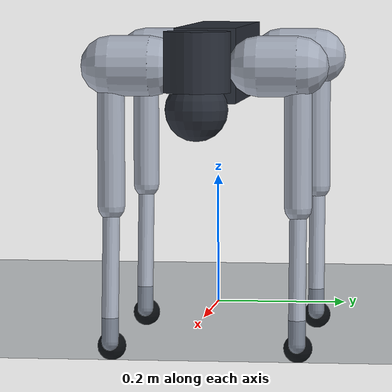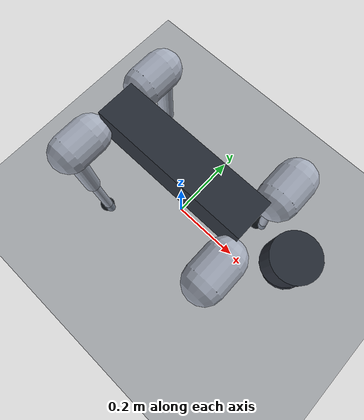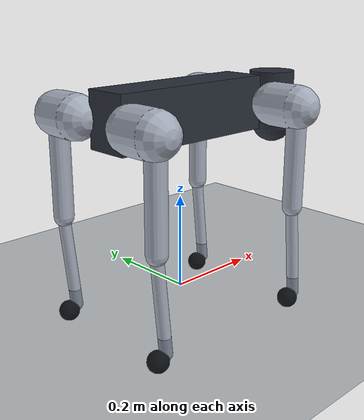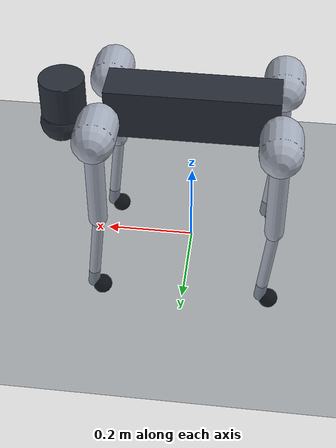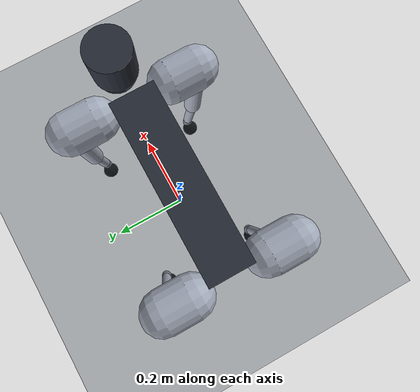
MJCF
<mujoco model="unitree_go2_autoodom">
  <compiler angle="radian" autolimits="true" inertiafromgeom="false"/>
  <option timestep="0.005" gravity="0 0 -9.81" integrator="implicitfast" iterations="50"/>

  <visual>
    <headlight ambient="0.35 0.35 0.35" diffuse="0.7 0.7 0.7" specular="0.2 0.2 0.2"/>
    <rgba haze="0.15 0.25 0.35 1"/>
    <global azimuth="135" elevation="-20"/>
  </visual>

  <default>
    <joint damping="0.1" armature="0.01" frictionloss="0.01"/>
    <geom friction="0.8 0.02 0.001" condim="3" solref="0.004 1" solimp="0.95 0.99 0.001"/>
    <motor gear="1"/>
  </default>

  <asset>
    <texture name="skybox" type="skybox" builtin="gradient" rgb1="0.3 0.5 0.7" rgb2="0 0 0" width="512" height="3072"/>
    <texture name="ground" type="2d" builtin="checker" rgb1="0.2 0.25 0.3" rgb2="0.1 0.15 0.2" width="512" height="512"/>
    <material name="ground" texture="ground" texrepeat="5 5" reflectance="0.05"/>
    <material name="body" rgba="0.16 0.18 0.22 1"/>
    <material name="leg" rgba="0.65 0.68 0.74 1"/>
    <material name="foot" rgba="0.04 0.04 0.04 1"/>
  </asset>

  <worldbody>
    <light pos="0 0 3" dir="0 0 -1" directional="true"/>
    <geom name="floor" type="plane" size="20 20 0.1" material="ground"/>
    <body name="base" pos="0 0 0.38">
      <freejoint name="base_freejoint"/>
      <inertial pos="0.021112 0 -0.005366" mass="6.921" diaginertia="0.02448 0.098077 0.107"/>
      <geom name="base_collision" type="box" size="0.1881 0.04675 0.057" material="body"/>
      <geom name="head_upper" type="cylinder" pos="0.285 0 0.01" size="0.05 0.045" material="body"/>
      <geom name="head_lower" type="sphere" pos="0.293 0 -0.06" size="0.047" material="body"/>
      <site name="imu_site" pos="-0.02557 0 0.04232" size="0.006" rgba="1 0 0 1"/>

      <body name="FL_hip" pos="0.1934 0.0465 0">
        <inertial pos="-0.0054 0.00194 -0.000105" mass="0.678" diaginertia="0.00048 0.000884 0.000596"/>
        <joint name="FL_hip_joint" axis="1 0 0" range="-1.0472 1.0472"/>
        <geom type="capsule" fromto="0 0.035 0 0 0.0955 0" size="0.046" material="leg"/>
        <body name="FL_thigh" pos="0 0.0955 0">
          <inertial pos="-0.00374 -0.0223 -0.0327" mass="1.152" diaginertia="0.00584 0.0058 0.00103"/>
          <joint name="FL_thigh_joint" axis="0 1 0" range="-1.5708 3.4907"/>
          <geom type="capsule" fromto="0 0 -0.015 0 0 -0.213" size="0.021" material="leg"/>
          <body name="FL_calf" pos="0 0 -0.213">
            <inertial pos="0.00548 -0.000975 -0.115" mass="0.154" diaginertia="0.00108 0.0011 0.0000329"/>
            <joint name="FL_calf_joint" axis="0 1 0" range="-2.7227 -0.83776"/>
            <geom type="capsule" fromto="0 0 -0.01 0.02 0 -0.205" size="0.013" material="leg"/>
            <geom name="FL_foot" type="sphere" pos="0 0 -0.213" size="0.022" material="foot"/>
          </body>
        </body>
      </body>

      <body name="FR_hip" pos="0.1934 -0.0465 0">
        <inertial pos="-0.0054 -0.00194 -0.000105" mass="0.678" diaginertia="0.00048 0.000884 0.000596"/>
        <joint name="FR_hip_joint" axis="1 0 0" range="-1.0472 1.0472"/>
        <geom type="capsule" fromto="0 -0.035 0 0 -0.0955 0" size="0.046" material="leg"/>
        <body name="FR_thigh" pos="0 -0.0955 0">
          <inertial pos="-0.00374 0.0223 -0.0327" mass="1.152" diaginertia="0.00584 0.0058 0.00103"/>
          <joint name="FR_thigh_joint" axis="0 1 0" range="-1.5708 3.4907"/>
          <geom type="capsule" fromto="0 0 -0.015 0 0 -0.213" size="0.021" material="leg"/>
          <body name="FR_calf" pos="0 0 -0.213">
            <inertial pos="0.00548 0.000975 -0.115" mass="0.154" diaginertia="0.00108 0.0011 0.0000329"/>
            <joint name="FR_calf_joint" axis="0 1 0" range="-2.7227 -0.83776"/>
            <geom type="capsule" fromto="0 0 -0.01 0.02 0 -0.205" size="0.013" material="leg"/>
            <geom name="FR_foot" type="sphere" pos="0 0 -0.213" size="0.022" material="foot"/>
          </body>
        </body>
      </body>

      <body name="RL_hip" pos="-0.1934 0.0465 0">
        <inertial pos="0.0054 0.00194 -0.000105" mass="0.678" diaginertia="0.00048 0.000884 0.000596"/>
        <joint name="RL_hip_joint" axis="1 0 0" range="-1.0472 1.0472"/>
        <geom type="capsule" fromto="0 0.035 0 0 0.0955 0" size="0.046" material="leg"/>
        <body name="RL_thigh" pos="0 0.0955 0">
          <inertial pos="-0.00374 -0.0223 -0.0327" mass="1.152" diaginertia="0.00584 0.0058 0.00103"/>
          <joint name="RL_thigh_joint" axis="0 1 0" range="-0.5236 4.5379"/>
          <geom type="capsule" fromto="0 0 -0.015 0 0 -0.213" size="0.021" material="leg"/>
          <body name="RL_calf" pos="0 0 -0.213">
            <inertial pos="0.00548 -0.000975 -0.115" mass="0.154" diaginertia="0.00108 0.0011 0.0000329"/>
            <joint name="RL_calf_joint" axis="0 1 0" range="-2.7227 -0.83776"/>
            <geom type="capsule" fromto="0 0 -0.01 0.02 0 -0.205" size="0.013" material="leg"/>
            <geom name="RL_foot" type="sphere" pos="0 0 -0.213" size="0.022" material="foot"/>
          </body>
        </body>
      </body>

      <body name="RR_hip" pos="-0.1934 -0.0465 0">
        <inertial pos="0.0054 -0.00194 -0.000105" mass="0.678" diaginertia="0.00048 0.000884 0.000596"/>
        <joint name="RR_hip_joint" axis="1 0 0" range="-1.0472 1.0472"/>
        <geom type="capsule" fromto="0 -0.035 0 0 -0.0955 0" size="0.046" material="leg"/>
        <body name="RR_thigh" pos="0 -0.0955 0">
          <inertial pos="-0.00374 0.0223 -0.0327" mass="1.152" diaginertia="0.00584 0.0058 0.00103"/>
          <joint name="RR_thigh_joint" axis="0 1 0" range="-0.5236 4.5379"/>
          <geom type="capsule" fromto="0 0 -0.015 0 0 -0.213" size="0.021" material="leg"/>
          <body name="RR_calf" pos="0 0 -0.213">
            <inertial pos="0.00548 0.000975 -0.115" mass="0.154" diaginertia="0.00108 0.0011 0.0000329"/>
            <joint name="RR_calf_joint" axis="0 1 0" range="-2.7227 -0.83776"/>
            <geom type="capsule" fromto="0 0 -0.01 0.02 0 -0.205" size="0.013" material="leg"/>
            <geom name="RR_foot" type="sphere" pos="0 0 -0.213" size="0.022" material="foot"/>
          </body>
        </body>
      </body>
    </body>
  </worldbody>

  <actuator>
    <motor name="motor_FL_hip" joint="FL_hip_joint" ctrlrange="-23.5 23.5"/>
    <motor name="motor_FR_hip" joint="FR_hip_joint" ctrlrange="-23.5 23.5"/>
    <motor name="motor_RL_hip" joint="RL_hip_joint" ctrlrange="-23.5 23.5"/>
    <motor name="motor_RR_hip" joint="RR_hip_joint" ctrlrange="-23.5 23.5"/>
    <motor name="motor_FL_thigh" joint="FL_thigh_joint" ctrlrange="-23.5 23.5"/>
    <motor name="motor_FR_thigh" joint="FR_thigh_joint" ctrlrange="-23.5 23.5"/>
    <motor name="motor_RL_thigh" joint="RL_thigh_joint" ctrlrange="-23.5 23.5"/>
    <motor name="motor_RR_thigh" joint="RR_thigh_joint" ctrlrange="-23.5 23.5"/>
    <motor name="motor_FL_calf" joint="FL_calf_joint" ctrlrange="-23.5 23.5"/>
    <motor name="motor_FR_calf" joint="FR_calf_joint" ctrlrange="-23.5 23.5"/>
    <motor name="motor_RL_calf" joint="RL_calf_joint" ctrlrange="-23.5 23.5"/>
    <motor name="motor_RR_calf" joint="RR_calf_joint" ctrlrange="-23.5 23.5"/>
  </actuator>

  <sensor>
    <gyro name="imu_gyro" site="imu_site"/>
    <accelerometer name="imu_accelerometer" site="imu_site"/>
  </sensor>
</mujoco>
